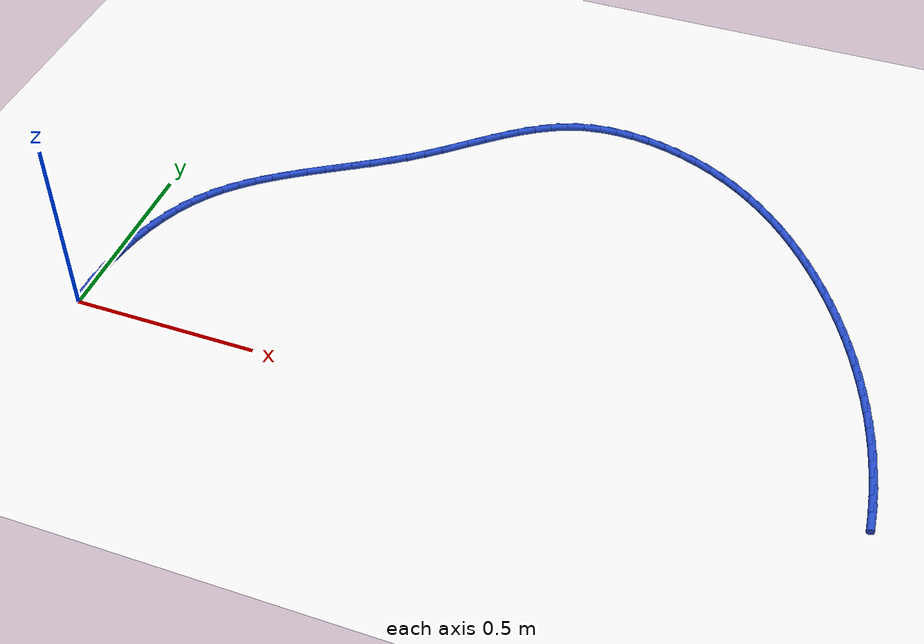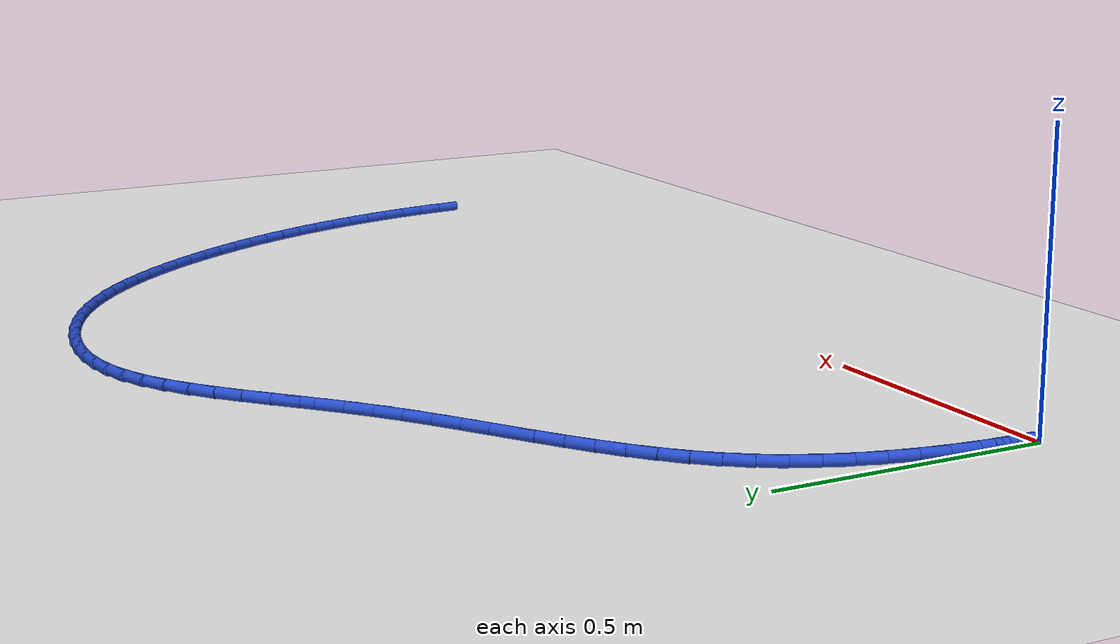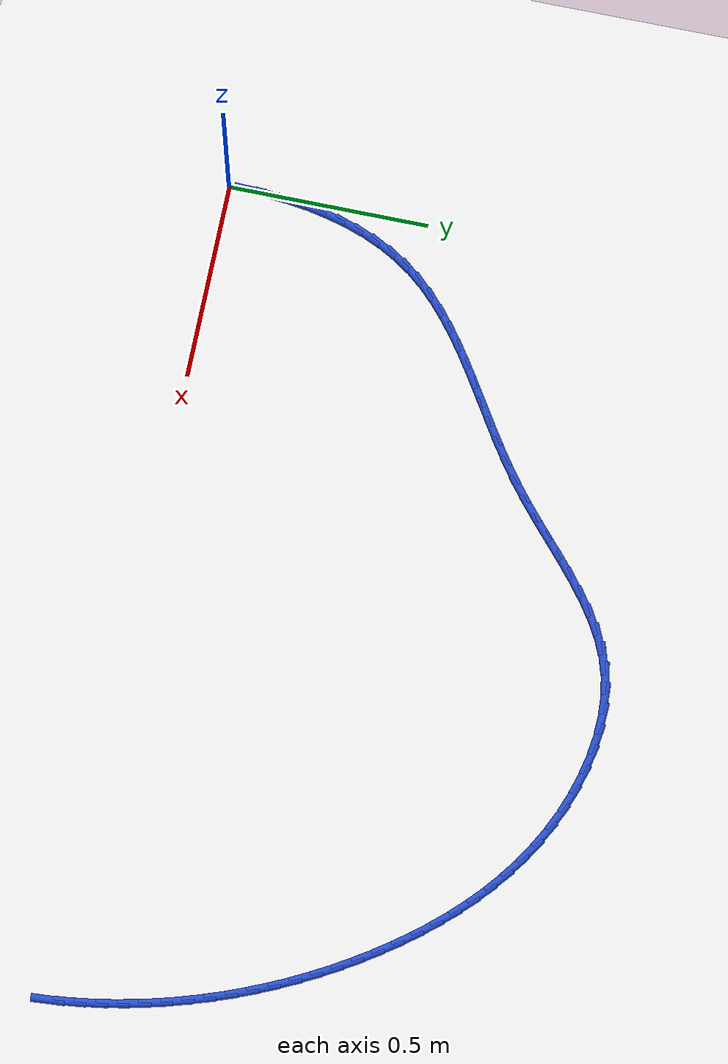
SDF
<sdf version="1.6">
 <world name="default">
  <model name="ground_plane">
   <static>1</static>
   <link name="link">
    <collision name="collision">
     <geometry><plane><normal>0 0 1</normal><size>100 100</size></plane></geometry>
     <surface><friction><ode><mu>100</mu><mu2>50</mu2></ode></friction></surface>
    </collision>
    <visual name="visual">
     <cast_shadows>0</cast_shadows>
     <geometry><plane><normal>0 0 1</normal><size>100 100</size></plane></geometry>
     <material>
      <script><uri>file://media/materials/scripts/gazebo.material</uri><name>Gazebo/WhiteGlow</name></script>
     </material>
    </visual>
   </link>
  </model>
  <model name="line">
   <link name="link_1">
    <pose>0.00016880920425938576 0.05283075199855581 0.01 0 1.57 1.5217161931188834</pose>
    <collision name="collision">
     <geometry><cylinder><radius>0.01</radius><length>0.08</length></cylinder></geometry>
    </collision>
    <visual name="visual">
     <material>
      <script><name>Gazebo/Blue</name><uri>file://media/materials/scripts/gazebo.material</uri></script>
     </material>
     <geometry><cylinder><radius>0.01</radius><length>0.08</length></cylinder></geometry>
    </visual>
   </link>
   <link name="link_2">
    <pose>0.0027684056158052426 0.10575458344564509 0.01 0 1.57 1.4725357011206648</pose>
    <collision name="collision">
     <geometry><cylinder><radius>0.01</radius><length>0.08</length></cylinder></geometry>
    </collision>
    <visual name="visual">
     <material>
      <script><name>Gazebo/Blue</name><uri>file://media/materials/scripts/gazebo.material</uri></script>
     </material>
     <geometry><cylinder><radius>0.01</radius><length>0.08</length></cylinder></geometry>
    </visual>
   </link>
   <link name="link_3">
    <pose>0.007956285093739765 0.15838168712572487 0.01 0 1.57 1.4192229404564358</pose>
    <collision name="collision">
     <geometry><cylinder><radius>0.01</radius><length>0.08</length></cylinder></geometry>
    </collision>
    <visual name="visual">
     <material>
      <script><name>Gazebo/Blue</name><uri>file://media/materials/scripts/gazebo.material</uri></script>
     </material>
     <geometry><cylinder><radius>0.01</radius><length>0.08</length></cylinder></geometry>
    </visual>
   </link>
   <link name="link_4">
    <pose>0.015889943497165195 0.21032225582325215 0.01 0 1.57 1.3608789306359168</pose>
    <collision name="collision">
     <geometry><cylinder><radius>0.01</radius><length>0.08</length></cylinder></geometry>
    </collision>
    <visual name="visual">
     <material>
      <script><name>Gazebo/Blue</name><uri>file://media/materials/scripts/gazebo.material</uri></script>
     </material>
     <geometry><cylinder><radius>0.01</radius><length>0.08</length></cylinder></geometry>
    </visual>
   </link>
   <link name="link_5">
    <pose>0.02672687668518376 0.26118648232268393 0.01 0 1.57 1.2965445590253224</pose>
    <collision name="collision">
     <geometry><cylinder><radius>0.01</radius><length>0.08</length></cylinder></geometry>
    </collision>
    <visual name="visual">
     <material>
      <script><name>Gazebo/Blue</name><uri>file://media/materials/scripts/gazebo.material</uri></script>
     </material>
     <geometry><cylinder><radius>0.01</radius><length>0.08</length></cylinder></geometry>
    </visual>
   </link>
   <link name="link_6">
    <pose>0.0406245805168977 0.3105845594084772 0.01 0 1.57 1.225225719919276</pose>
    <collision name="collision">
     <geometry><cylinder><radius>0.01</radius><length>0.08</length></cylinder></geometry>
    </collision>
    <visual name="visual">
     <material>
      <script><name>Gazebo/Blue</name><uri>file://media/materials/scripts/gazebo.material</uri></script>
     </material>
     <geometry><cylinder><radius>0.01</radius><length>0.08</length></cylinder></geometry>
    </visual>
   </link>
   <link name="link_7">
    <pose>0.05774055085140927 0.3581266798650889 0.01 0 1.57 1.1459545654287546</pose>
    <collision name="collision">
     <geometry><cylinder><radius>0.01</radius><length>0.08</length></cylinder></geometry>
    </collision>
    <visual name="visual">
     <material>
      <script><name>Gazebo/Blue</name><uri>file://media/materials/scripts/gazebo.material</uri></script>
     </material>
     <geometry><cylinder><radius>0.01</radius><length>0.08</length></cylinder></geometry>
    </visual>
   </link>
   <link name="link_8">
    <pose>0.07823228354782068 0.40342303647697614 0.01 0 1.57 1.0579030993038505</pose>
    <collision name="collision">
     <geometry><cylinder><radius>0.01</radius><length>0.08</length></cylinder></geometry>
    </collision>
    <visual name="visual">
     <material>
      <script><name>Gazebo/Blue</name><uri>file://media/materials/scripts/gazebo.material</uri></script>
     </material>
     <geometry><cylinder><radius>0.01</radius><length>0.08</length></cylinder></geometry>
    </visual>
   </link>
   <link name="link_9">
    <pose>0.1022572744652342 0.44608382202859587 0.01 0 1.57 0.9610692254899225</pose>
    <collision name="collision">
     <geometry><cylinder><radius>0.01</radius><length>0.08</length></cylinder></geometry>
    </collision>
    <visual name="visual">
     <material>
      <script><name>Gazebo/Blue</name><uri>file://media/materials/scripts/gazebo.material</uri></script>
     </material>
     <geometry><cylinder><radius>0.01</radius><length>0.08</length></cylinder></geometry>
    </visual>
   </link>
   <link name="link_10">
    <pose>0.1299579583807061 0.48574048480713944 0.01 0 1.57 0.8656537810490934</pose>
    <collision name="collision">
     <geometry><cylinder><radius>0.01</radius><length>0.08</length></cylinder></geometry>
    </collision>
    <visual name="visual">
     <material>
      <script><name>Gazebo/Blue</name><uri>file://media/materials/scripts/gazebo.material</uri></script>
     </material>
     <geometry><cylinder><radius>0.01</radius><length>0.08</length></cylinder></geometry>
    </visual>
   </link>
   <link name="link_11">
    <pose>0.16118743781784403 0.5224328038216931 0.01 0 1.57 0.7822617730909754</pose>
    <collision name="collision">
     <geometry><cylinder><radius>0.01</radius><length>0.08</length></cylinder></geometry>
    </collision>
    <visual name="visual">
     <material>
      <script><name>Gazebo/Blue</name><uri>file://media/materials/scripts/gazebo.material</uri></script>
     </material>
     <geometry><cylinder><radius>0.01</radius><length>0.08</length></cylinder></geometry>
    </visual>
   </link>
   <link name="link_12">
    <pose>0.19553803232926892 0.5565685975844813 0.01 0 1.57 0.7123339941653968</pose>
    <collision name="collision">
     <geometry><cylinder><radius>0.01</radius><length>0.08</length></cylinder></geometry>
    </collision>
    <visual name="visual">
     <material>
      <script><name>Gazebo/Blue</name><uri>file://media/materials/scripts/gazebo.material</uri></script>
     </material>
     <geometry><cylinder><radius>0.01</radius><length>0.08</length></cylinder></geometry>
    </visual>
   </link>
   <link name="link_13">
    <pose>0.23259272956681815 0.5885688545939218 0.01 0 1.57 0.6560595431291992</pose>
    <collision name="collision">
     <geometry><cylinder><radius>0.01</radius><length>0.08</length></cylinder></geometry>
    </collision>
    <visual name="visual">
     <material>
      <script><name>Gazebo/Blue</name><uri>file://media/materials/scripts/gazebo.material</uri></script>
     </material>
     <geometry><cylinder><radius>0.01</radius><length>0.08</length></cylinder></geometry>
    </visual>
   </link>
   <link name="link_14">
    <pose>0.27193451718232925 0.6188545633484336 0.01 0 1.57 0.6130646292164763</pose>
    <collision name="collision">
     <geometry><cylinder><radius>0.01</radius><length>0.08</length></cylinder></geometry>
    </collision>
    <visual name="visual">
     <material>
      <script><name>Gazebo/Blue</name><uri>file://media/materials/scripts/gazebo.material</uri></script>
     </material>
     <geometry><cylinder><radius>0.01</radius><length>0.08</length></cylinder></geometry>
    </visual>
   </link>
   <link name="link_15">
    <pose>0.31314638282763985 0.6478467123464346 0.01 0 1.57 0.5827314771195061</pose>
    <collision name="collision">
     <geometry><cylinder><radius>0.01</radius><length>0.08</length></cylinder></geometry>
    </collision>
    <visual name="visual">
     <material>
      <script><name>Gazebo/Blue</name><uri>file://media/materials/scripts/gazebo.material</uri></script>
     </material>
     <geometry><cylinder><radius>0.01</radius><length>0.08</length></cylinder></geometry>
    </visual>
   </link>
   <link name="link_16">
    <pose>0.35581131415458744 0.6759662900863435 0.01 0 1.57 0.5644175692639861</pose>
    <collision name="collision">
     <geometry><cylinder><radius>0.01</radius><length>0.08</length></cylinder></geometry>
    </collision>
    <visual name="visual">
     <material>
      <script><name>Gazebo/Blue</name><uri>file://media/materials/scripts/gazebo.material</uri></script>
     </material>
     <geometry><cylinder><radius>0.01</radius><length>0.08</length></cylinder></geometry>
    </visual>
   </link>
   <link name="link_17">
    <pose>0.39951229881500955 0.7036342850665785 0.01 0 1.57 0.557582724492583</pose>
    <collision name="collision">
     <geometry><cylinder><radius>0.01</radius><length>0.08</length></cylinder></geometry>
    </collision>
    <visual name="visual">
     <material>
      <script><name>Gazebo/Blue</name><uri>file://media/materials/scripts/gazebo.material</uri></script>
     </material>
     <geometry><cylinder><radius>0.01</radius><length>0.08</length></cylinder></geometry>
    </visual>
   </link>
   <link name="link_18">
    <pose>0.4438323244607437 0.7312716857855583 0.01 0 1.57 0.5618474163214469</pose>
    <collision name="collision">
     <geometry><cylinder><radius>0.01</radius><length>0.08</length></cylinder></geometry>
    </collision>
    <visual name="visual">
     <material>
      <script><name>Gazebo/Blue</name><uri>file://media/materials/scripts/gazebo.material</uri></script>
     </material>
     <geometry><cylinder><radius>0.01</radius><length>0.08</length></cylinder></geometry>
    </visual>
   </link>
   <link name="link_19">
    <pose>0.4883543787436273 0.7592994807417007 0.01 0 1.57 0.5770029798737512</pose>
    <collision name="collision">
     <geometry><cylinder><radius>0.01</radius><length>0.08</length></cylinder></geometry>
    </collision>
    <visual name="visual">
     <material>
      <script><name>Gazebo/Blue</name><uri>file://media/materials/scripts/gazebo.material</uri></script>
     </material>
     <geometry><cylinder><radius>0.01</radius><length>0.08</length></cylinder></geometry>
    </visual>
   </link>
   <link name="link_20">
    <pose>0.532661449315498 0.7881386584334245 0.01 0 1.57 0.6029856476829477</pose>
    <collision name="collision">
     <geometry><cylinder><radius>0.01</radius><length>0.08</length></cylinder></geometry>
    </collision>
    <visual name="visual">
     <material>
      <script><name>Gazebo/Blue</name><uri>file://media/materials/scripts/gazebo.material</uri></script>
     </material>
     <geometry><cylinder><radius>0.01</radius><length>0.08</length></cylinder></geometry>
    </visual>
   </link>
   <link name="link_21">
    <pose>0.5763365238281934 0.818210207359148 0.01 0 1.57 0.6398139744520899</pose>
    <collision name="collision">
     <geometry><cylinder><radius>0.01</radius><length>0.08</length></cylinder></geometry>
    </collision>
    <visual name="visual">
     <material>
      <script><name>Gazebo/Blue</name><uri>file://media/materials/scripts/gazebo.material</uri></script>
     </material>
     <geometry><cylinder><radius>0.01</radius><length>0.08</length></cylinder></geometry>
    </visual>
   </link>
   <link name="link_22">
    <pose>0.618962702315815 0.8499349416505741 0.01 0 1.57 0.6814460026740442</pose>
    <collision name="collision">
     <geometry><cylinder><radius>0.01</radius><length>0.08</length></cylinder></geometry>
    </collision>
    <visual name="visual">
     <material>
      <script><name>Gazebo/Blue</name><uri>file://media/materials/scripts/gazebo.material</uri></script>
     </material>
     <geometry><cylinder><radius>0.01</radius><length>0.08</length></cylinder></geometry>
    </visual>
   </link>
   <link name="link_23">
    <pose>0.6602988941310656 0.883460898470045 0.01 0 1.57 0.709720008001309</pose>
    <collision name="collision">
     <geometry><cylinder><radius>0.01</radius><length>0.08</length></cylinder></geometry>
    </collision>
    <visual name="visual">
     <material>
      <script><name>Gazebo/Blue</name><uri>file://media/materials/scripts/gazebo.material</uri></script>
     </material>
     <geometry><cylinder><radius>0.01</radius><length>0.08</length></cylinder></geometry>
    </visual>
   </link>
   <link name="link_24">
    <pose>0.7006353942339859 0.9181116435771062 0.01 0 1.57 0.721428965324659</pose>
    <collision name="collision">
     <geometry><cylinder><radius>0.01</radius><length>0.08</length></cylinder></geometry>
    </collision>
    <visual name="visual">
     <material>
      <script><name>Gazebo/Blue</name><uri>file://media/materials/scripts/gazebo.material</uri></script>
     </material>
     <geometry><cylinder><radius>0.01</radius><length>0.08</length></cylinder></geometry>
    </visual>
   </link>
   <link name="link_25">
    <pose>0.740362502973592 0.9530555793580441 0.01 0 1.57 0.7164743087923985</pose>
    <collision name="collision">
     <geometry><cylinder><radius>0.01</radius><length>0.08</length></cylinder></geometry>
    </collision>
    <visual name="visual">
     <material>
      <script><name>Gazebo/Blue</name><uri>file://media/materials/scripts/gazebo.material</uri></script>
     </material>
     <geometry><cylinder><radius>0.01</radius><length>0.08</length></cylinder></geometry>
    </visual>
   </link>
   <link name="link_26">
    <pose>0.7798705206989003 0.9874611081991465 0.01 0 1.57 0.6942844926672463</pose>
    <collision name="collision">
     <geometry><cylinder><radius>0.01</radius><length>0.08</length></cylinder></geometry>
    </collision>
    <visual name="visual">
     <material>
      <script><name>Gazebo/Blue</name><uri>file://media/materials/scripts/gazebo.material</uri></script>
     </material>
     <geometry><cylinder><radius>0.01</radius><length>0.08</length></cylinder></geometry>
    </visual>
   </link>
   <link name="link_27">
    <pose>0.8195497477589264 1.0204966324866995 0.01 0 1.57 0.6538117575708836</pose>
    <collision name="collision">
     <geometry><cylinder><radius>0.01</radius><length>0.08</length></cylinder></geometry>
    </collision>
    <visual name="visual">
     <material>
      <script><name>Gazebo/Blue</name><uri>file://media/materials/scripts/gazebo.material</uri></script>
     </material>
     <geometry><cylinder><radius>0.01</radius><length>0.08</length></cylinder></geometry>
    </visual>
   </link>
   <link name="link_28">
    <pose>0.859790484502687 1.0513305546069902 0.01 0 1.57 0.5936788382576965</pose>
    <collision name="collision">
     <geometry><cylinder><radius>0.01</radius><length>0.08</length></cylinder></geometry>
    </collision>
    <visual name="visual">
     <material>
      <script><name>Gazebo/Blue</name><uri>file://media/materials/scripts/gazebo.material</uri></script>
     </material>
     <geometry><cylinder><radius>0.01</radius><length>0.08</length></cylinder></geometry>
    </visual>
   </link>
   <link name="link_29">
    <pose>0.9009830312791981 1.0791312769463053 0.01 0 1.57 0.5125712557532506</pose>
    <collision name="collision">
     <geometry><cylinder><radius>0.01</radius><length>0.08</length></cylinder></geometry>
    </collision>
    <visual name="visual">
     <material>
      <script><name>Gazebo/Blue</name><uri>file://media/materials/scripts/gazebo.material</uri></script>
     </material>
     <geometry><cylinder><radius>0.01</radius><length>0.08</length></cylinder></geometry>
    </visual>
   </link>
   <link name="link_30">
    <pose>0.9435176884374755 1.1030672018909315 0.01 0 1.57 0.4099939367366995</pose>
    <collision name="collision">
     <geometry><cylinder><radius>0.01</radius><length>0.08</length></cylinder></geometry>
    </collision>
    <visual name="visual">
     <material>
      <script><name>Gazebo/Blue</name><uri>file://media/materials/scripts/gazebo.material</uri></script>
     </material>
     <geometry><cylinder><radius>0.01</radius><length>0.08</length></cylinder></geometry>
    </visual>
   </link>
   <link name="link_31">
    <pose>0.9877847563265357 1.1223067318271562 0.01 0 1.57 0.2875044050942724</pose>
    <collision name="collision">
     <geometry><cylinder><radius>0.01</radius><length>0.08</length></cylinder></geometry>
    </collision>
    <visual name="visual">
     <material>
      <script><name>Gazebo/Blue</name><uri>file://media/materials/scripts/gazebo.material</uri></script>
     </material>
     <geometry><cylinder><radius>0.01</radius><length>0.08</length></cylinder></geometry>
    </visual>
   </link>
   <link name="link_32">
    <pose>1.034170772244403 1.136022936431872 0.01 0 1.57 0.15897100343645645</pose>
    <collision name="collision">
     <geometry><cylinder><radius>0.01</radius><length>0.08</length></cylinder></geometry>
    </collision>
    <visual name="visual">
     <material>
      <script><name>Gazebo/Blue</name><uri>file://media/materials/scripts/gazebo.material</uri></script>
     </material>
     <geometry><cylinder><radius>0.01</radius><length>0.08</length></cylinder></geometry>
    </visual>
   </link>
   <link name="link_33">
    <pose>1.0827249050826673 1.1438073214853492 0.01 0 1.57 0.04358207065788903</pose>
    <collision name="collision">
     <geometry><cylinder><radius>0.01</radius><length>0.08</length></cylinder></geometry>
    </collision>
    <visual name="visual">
     <material>
      <script><name>Gazebo/Blue</name><uri>file://media/materials/scripts/gazebo.material</uri></script>
     </material>
     <geometry><cylinder><radius>0.01</radius><length>0.08</length></cylinder></geometry>
    </visual>
   </link>
   <link name="link_34">
    <pose>1.1328965481204405 1.1459952910268636 0.01 0 1.57 -0.05848413223083326</pose>
    <collision name="collision">
     <geometry><cylinder><radius>0.01</radius><length>0.08</length></cylinder></geometry>
    </collision>
    <visual name="visual">
     <material>
      <script><name>Gazebo/Blue</name><uri>file://media/materials/scripts/gazebo.material</uri></script>
     </material>
     <geometry><cylinder><radius>0.01</radius><length>0.08</length></cylinder></geometry>
    </visual>
   </link>
   <link name="link_35">
    <pose>1.184073339473137 1.1429988436717315 0.01 0 1.57 -0.14952385342318855</pose>
    <collision name="collision">
     <geometry><cylinder><radius>0.01</radius><length>0.08</length></cylinder></geometry>
    </collision>
    <visual name="visual">
     <material>
      <script><name>Gazebo/Blue</name><uri>file://media/materials/scripts/gazebo.material</uri></script>
     </material>
     <geometry><cylinder><radius>0.01</radius><length>0.08</length></cylinder></geometry>
    </visual>
   </link>
   <link name="link_36">
    <pose>1.2356429172561711 1.1352299780352686 0.01 0 1.57 -0.23195650446520774</pose>
    <collision name="collision">
     <geometry><cylinder><radius>0.01</radius><length>0.08</length></cylinder></geometry>
    </collision>
    <visual name="visual">
     <material>
      <script><name>Gazebo/Blue</name><uri>file://media/materials/scripts/gazebo.material</uri></script>
     </material>
     <geometry><cylinder><radius>0.01</radius><length>0.08</length></cylinder></geometry>
    </visual>
   </link>
   <link name="link_37">
    <pose>1.2869929195849585 1.1231006927327918 0.01 0 1.57 -0.30812066404644317</pose>
    <collision name="collision">
     <geometry><cylinder><radius>0.01</radius><length>0.08</length></cylinder></geometry>
    </collision>
    <visual name="visual">
     <material>
      <script><name>Gazebo/Blue</name><uri>file://media/materials/scripts/gazebo.material</uri></script>
     </material>
     <geometry><cylinder><radius>0.01</radius><length>0.08</length></cylinder></geometry>
    </visual>
   </link>
   <link name="link_38">
    <pose>1.3375109845749142 1.107022986379616 0.01 0 1.57 -0.3802362141623928</pose>
    <collision name="collision">
     <geometry><cylinder><radius>0.01</radius><length>0.08</length></cylinder></geometry>
    </collision>
    <visual name="visual">
     <material>
      <script><name>Gazebo/Blue</name><uri>file://media/materials/scripts/gazebo.material</uri></script>
     </material>
     <geometry><cylinder><radius>0.01</radius><length>0.08</length></cylinder></geometry>
    </visual>
   </link>
   <link name="link_39">
    <pose>1.3865847503414526 1.0874088575910583 0.01 0 1.57 -0.4503257568881248</pose>
    <collision name="collision">
     <geometry><cylinder><radius>0.01</radius><length>0.08</length></cylinder></geometry>
    </collision>
    <visual name="visual">
     <material>
      <script><name>Gazebo/Blue</name><uri>file://media/materials/scripts/gazebo.material</uri></script>
     </material>
     <geometry><cylinder><radius>0.01</radius><length>0.08</length></cylinder></geometry>
    </visual>
   </link>
   <link name="link_40">
    <pose>1.4336437849086765 1.0646578426890885 0.01 0 1.57 -0.5184984925996985</pose>
    <collision name="collision">
     <geometry><cylinder><radius>0.01</radius><length>0.08</length></cylinder></geometry>
    </collision>
    <visual name="visual">
     <material>
      <script><name>Gazebo/Blue</name><uri>file://media/materials/scripts/gazebo.material</uri></script>
     </material>
     <geometry><cylinder><radius>0.01</radius><length>0.08</length></cylinder></geometry>
    </visual>
   </link>
   <link name="link_41">
    <pose>1.4785307376377972 1.039046703084889 0.01 0 1.57 -0.5837195294627664</pose>
    <collision name="collision">
     <geometry><cylinder><radius>0.01</radius><length>0.08</length></cylinder></geometry>
    </collision>
    <visual name="visual">
     <material>
      <script><name>Gazebo/Blue</name><uri>file://media/materials/scripts/gazebo.material</uri></script>
     </material>
     <geometry><cylinder><radius>0.01</radius><length>0.08</length></cylinder></geometry>
    </visual>
   </link>
   <link name="link_42">
    <pose>1.521323238136247 1.0107823600003707 0.01 0 1.57 -0.6455013143738767</pose>
    <collision name="collision">
     <geometry><cylinder><radius>0.01</radius><length>0.08</length></cylinder></geometry>
    </collision>
    <visual name="visual">
     <material>
      <script><name>Gazebo/Blue</name><uri>file://media/materials/scripts/gazebo.material</uri></script>
     </material>
     <geometry><cylinder><radius>0.01</radius><length>0.08</length></cylinder></geometry>
    </visual>
   </link>
   <link name="link_43">
    <pose>1.562101631908862 0.980070927445812 0.01 0 1.57 -0.7035138767028698</pose>
    <collision name="collision">
     <geometry><cylinder><radius>0.01</radius><length>0.08</length></cylinder></geometry>
    </collision>
    <visual name="visual">
     <material>
      <script><name>Gazebo/Blue</name><uri>file://media/materials/scripts/gazebo.material</uri></script>
     </material>
     <geometry><cylinder><radius>0.01</radius><length>0.08</length></cylinder></geometry>
    </visual>
   </link>
   <link name="link_44">
    <pose>1.6009462644604777 0.9471185194314907 0.01 0 1.57 -0.7575644320865647</pose>
    <collision name="collision">
     <geometry><cylinder><radius>0.01</radius><length>0.08</length></cylinder></geometry>
    </collision>
    <visual name="visual">
     <material>
      <script><name>Gazebo/Blue</name><uri>file://media/materials/scripts/gazebo.material</uri></script>
     </material>
     <geometry><cylinder><radius>0.01</radius><length>0.08</length></cylinder></geometry>
    </visual>
   </link>
   <link name="link_45">
    <pose>1.6379374812959289 0.912131249967684 0.01 0 1.57 -0.8075766437545984</pose>
    <collision name="collision">
     <geometry><cylinder><radius>0.01</radius><length>0.08</length></cylinder></geometry>
    </collision>
    <visual name="visual">
     <material>
      <script><name>Gazebo/Blue</name><uri>file://media/materials/scripts/gazebo.material</uri></script>
     </material>
     <geometry><cylinder><radius>0.01</radius><length>0.08</length></cylinder></geometry>
    </visual>
   </link>
   <link name="link_46">
    <pose>1.6731556279200523 0.8753152330646693 0.01 0 1.57 -0.8535657310569862</pose>
    <collision name="collision">
     <geometry><cylinder><radius>0.01</radius><length>0.08</length></cylinder></geometry>
    </collision>
    <visual name="visual">
     <material>
      <script><name>Gazebo/Blue</name><uri>file://media/materials/scripts/gazebo.material</uri></script>
     </material>
     <geometry><cylinder><radius>0.01</radius><length>0.08</length></cylinder></geometry>
    </visual>
   </link>
   <link name="link_47">
    <pose>1.7066810498376823 0.8368765827327247 0.01 0 1.57 -0.895613285517763</pose>
    <collision name="collision">
     <geometry><cylinder><radius>0.01</radius><length>0.08</length></cylinder></geometry>
    </collision>
    <visual name="visual">
     <material>
      <script><name>Gazebo/Blue</name><uri>file://media/materials/scripts/gazebo.material</uri></script>
     </material>
     <geometry><cylinder><radius>0.01</radius><length>0.08</length></cylinder></geometry>
    </visual>
   </link>
   <link name="link_48">
    <pose>1.7385940925536554 0.7970214129821279 0.01 0 1.57 -0.933844280628233</pose>
    <collision name="collision">
     <geometry><cylinder><radius>0.01</radius><length>0.08</length></cylinder></geometry>
    </collision>
    <visual name="visual">
     <material>
      <script><name>Gazebo/Blue</name><uri>file://media/materials/scripts/gazebo.material</uri></script>
     </material>
     <geometry><cylinder><radius>0.01</radius><length>0.08</length></cylinder></geometry>
    </visual>
   </link>
   <link name="link_49">
    <pose>1.7689751015728064 0.7559558378231563 0.01 0 1.57 -0.9686598718349562</pose>
    <collision name="collision">
     <geometry><cylinder><radius>0.01</radius><length>0.08</length></cylinder></geometry>
    </collision>
    <visual name="visual">
     <material>
      <script><name>Gazebo/Blue</name><uri>file://media/materials/scripts/gazebo.material</uri></script>
     </material>
     <geometry><cylinder><radius>0.01</radius><length>0.08</length></cylinder></geometry>
    </visual>
   </link>
   <link name="link_50">
    <pose>1.7978967189707808 0.7138744307357672 0.01 0 1.57 -1.0021842791049758</pose>
    <collision name="collision">
     <geometry><cylinder><radius>0.01</radius><length>0.08</length></cylinder></geometry>
    </collision>
    <visual name="visual">
     <material>
      <script><name>Gazebo/Blue</name><uri>file://media/materials/scripts/gazebo.material</uri></script>
     </material>
     <geometry><cylinder><radius>0.01</radius><length>0.08</length></cylinder></geometry>
    </visual>
   </link>
   <link name="link_51">
    <pose>1.8253705105443532 0.6708802666437971 0.01 0 1.57 -1.0354228823139249</pose>
    <collision name="collision">
     <geometry><cylinder><radius>0.01</radius><length>0.08</length></cylinder></geometry>
    </collision>
    <visual name="visual">
     <material>
      <script><name>Gazebo/Blue</name><uri>file://media/materials/scripts/gazebo.material</uri></script>
     </material>
     <geometry><cylinder><radius>0.01</radius><length>0.08</length></cylinder></geometry>
    </visual>
   </link>
   <link name="link_52">
    <pose>1.8513789578522373 0.6270328492870213 0.01 0 1.57 -1.0684241601664008</pose>
    <collision name="collision">
     <geometry><cylinder><radius>0.01</radius><length>0.08</length></cylinder></geometry>
    </collision>
    <visual name="visual">
     <material>
      <script><name>Gazebo/Blue</name><uri>file://media/materials/scripts/gazebo.material</uri></script>
     </material>
     <geometry><cylinder><radius>0.01</radius><length>0.08</length></cylinder></geometry>
    </visual>
   </link>
   <link name="link_53">
    <pose>1.8759043643705717 0.5823914156191742 0.01 0 1.57 -1.1012326102512902</pose>
    <collision name="collision">
     <geometry><cylinder><radius>0.01</radius><length>0.08</length></cylinder></geometry>
    </collision>
    <visual name="visual">
     <material>
      <script><name>Gazebo/Blue</name><uri>file://media/materials/scripts/gazebo.material</uri></script>
     </material>
     <geometry><cylinder><radius>0.01</radius><length>0.08</length></cylinder></geometry>
    </visual>
   </link>
   <link name="link_54">
    <pose>1.8989290335754938 0.5370152025939893 0.01 0 1.57 -1.1338943101930445</pose>
    <collision name="collision">
     <geometry><cylinder><radius>0.01</radius><length>0.08</length></cylinder></geometry>
    </collision>
    <visual name="visual">
     <material>
      <script><name>Gazebo/Blue</name><uri>file://media/materials/scripts/gazebo.material</uri></script>
     </material>
     <geometry><cylinder><radius>0.01</radius><length>0.08</length></cylinder></geometry>
    </visual>
   </link>
   <link name="link_55">
    <pose>1.9204352689431412 0.4909634471652012 0.01 0 1.57 -1.1664566742122227</pose>
    <collision name="collision">
     <geometry><cylinder><radius>0.01</radius><length>0.08</length></cylinder></geometry>
    </collision>
    <visual name="visual">
     <material>
      <script><name>Gazebo/Blue</name><uri>file://media/materials/scripts/gazebo.material</uri></script>
     </material>
     <geometry><cylinder><radius>0.01</radius><length>0.08</length></cylinder></geometry>
    </visual>
   </link>
   <link name="link_56">
    <pose>1.940405373949652 0.4442953862865443 0.01 0 1.57 -1.1989682331930835</pose>
    <collision name="collision">
     <geometry><cylinder><radius>0.01</radius><length>0.08</length></cylinder></geometry>
    </collision>
    <visual name="visual">
     <material>
      <script><name>Gazebo/Blue</name><uri>file://media/materials/scripts/gazebo.material</uri></script>
     </material>
     <geometry><cylinder><radius>0.01</radius><length>0.08</length></cylinder></geometry>
    </visual>
   </link>
   <link name="link_57">
    <pose>1.9588216520711643 0.39707025691175274 0.01 0 1.57 -1.2314784321437775</pose>
    <collision name="collision">
     <geometry><cylinder><radius>0.01</radius><length>0.08</length></cylinder></geometry>
    </collision>
    <visual name="visual">
     <material>
      <script><name>Gazebo/Blue</name><uri>file://media/materials/scripts/gazebo.material</uri></script>
     </material>
     <geometry><cylinder><radius>0.01</radius><length>0.08</length></cylinder></geometry>
    </visual>
   </link>
   <link name="link_58">
    <pose>1.9756664067838139 0.34934729599456 0.01 0 1.57 -1.2640374383792663</pose>
    <collision name="collision">
     <geometry><cylinder><radius>0.01</radius><length>0.08</length></cylinder></geometry>
    </collision>
    <visual name="visual">
     <material>
      <script><name>Gazebo/Blue</name><uri>file://media/materials/scripts/gazebo.material</uri></script>
     </material>
     <geometry><cylinder><radius>0.01</radius><length>0.08</length></cylinder></geometry>
    </visual>
   </link>
   <link name="link_59">
    <pose>1.9909219415637411 0.30118574048870084 0.01 0 1.57 -1.2967009505042466</pose>
    <collision name="collision">
     <geometry><cylinder><radius>0.01</radius><length>0.08</length></cylinder></geometry>
    </collision>
    <visual name="visual">
     <material>
      <script><name>Gazebo/Blue</name><uri>file://media/materials/scripts/gazebo.material</uri></script>
     </material>
     <geometry><cylinder><radius>0.01</radius><length>0.08</length></cylinder></geometry>
    </visual>
   </link>
   <link name="link_60">
    <pose>2.0045716269280773 0.2526401014616076 0.01 0 1.57 -1.3295233508064606</pose>
    <collision name="collision">
     <geometry><cylinder><radius>0.01</radius><length>0.08</length></cylinder></geometry>
    </collision>
    <visual name="visual">
     <material>
      <script><name>Gazebo/Blue</name><uri>file://media/materials/scripts/gazebo.material</uri></script>
     </material>
     <geometry><cylinder><radius>0.01</radius><length>0.08</length></cylinder></geometry>
    </visual>
   </link>
   <link name="link_61">
    <pose>2.0166062079022016 0.20373222854817 0.01 0 1.57 -1.3624764962066471</pose>
    <collision name="collision">
     <geometry><cylinder><radius>0.01</radius><length>0.08</length></cylinder></geometry>
    </collision>
    <visual name="visual">
     <material>
      <script><name>Gazebo/Blue</name><uri>file://media/materials/scripts/gazebo.material</uri></script>
     </material>
     <geometry><cylinder><radius>0.01</radius><length>0.08</length></cylinder></geometry>
    </visual>
   </link>
   <link name="link_62">
    <pose>2.027019544701977 0.15447017431633825 0.01 0 1.57 -1.3955070280299442</pose>
    <collision name="collision">
     <geometry><cylinder><radius>0.01</radius><length>0.08</length></cylinder></geometry>
    </collision>
    <visual name="visual">
     <material>
      <script><name>Gazebo/Blue</name><uri>file://media/materials/scripts/gazebo.material</uri></script>
     </material>
     <geometry><cylinder><radius>0.01</radius><length>0.08</length></cylinder></geometry>
    </visual>
   </link>
   <link name="link_63">
    <pose>2.035805508594678 0.10486194238776277 0.01 0 1.57 -1.428560602212105</pose>
    <collision name="collision">
     <geometry><cylinder><radius>0.01</radius><length>0.08</length></cylinder></geometry>
    </collision>
    <visual name="visual">
     <material>
      <script><name>Gazebo/Blue</name><uri>file://media/materials/scripts/gazebo.material</uri></script>
     </material>
     <geometry><cylinder><radius>0.01</radius><length>0.08</length></cylinder></geometry>
    </visual>
   </link>
   <link name="link_64">
    <pose>2.0429579708475782 0.05491553638409412 0.01 0 1.57 -1.4615825251820094</pose>
    <collision name="collision">
     <geometry><cylinder><radius>0.01</radius><length>0.08</length></cylinder></geometry>
    </collision>
    <visual name="visual">
     <material>
      <script><name>Gazebo/Blue</name><uri>file://media/materials/scripts/gazebo.material</uri></script>
     </material>
     <geometry><cylinder><radius>0.01</radius><length>0.08</length></cylinder></geometry>
    </visual>
   </link>
   <link name="link_65">
    <pose>2.048470802727951 0.004638959926981986 0.01 0 1.57 -1.4945183474460628</pose>
    <collision name="collision">
     <geometry><cylinder><radius>0.01</radius><length>0.08</length></cylinder></geometry>
    </collision>
    <visual name="visual">
     <material>
      <script><name>Gazebo/Blue</name><uri>file://media/materials/scripts/gazebo.material</uri></script>
     </material>
     <geometry><cylinder><radius>0.01</radius><length>0.08</length></cylinder></geometry>
    </visual>
   </link>
   <link name="link_131">
    <pose>0.00013852596209645504 0.05288179604936019 0.01 0 1.57 1.5681767931256165</pose>
    <collision name="collision">
     <geometry><cylinder><radius>0.01</radius><length>0.08</length></cylinder></geometry>
    </collision>
    <visual name="visual">
     <material>
      <script><name>Gazebo/Blue</name><uri>file://media/materials/scripts/gazebo.material</uri></script>
     </material>
     <geometry><cylinder><radius>0.01</radius><length>0.08</length></cylinder></geometry>
    </visual>
   </link>
  </model>
 </world>
</sdf>
